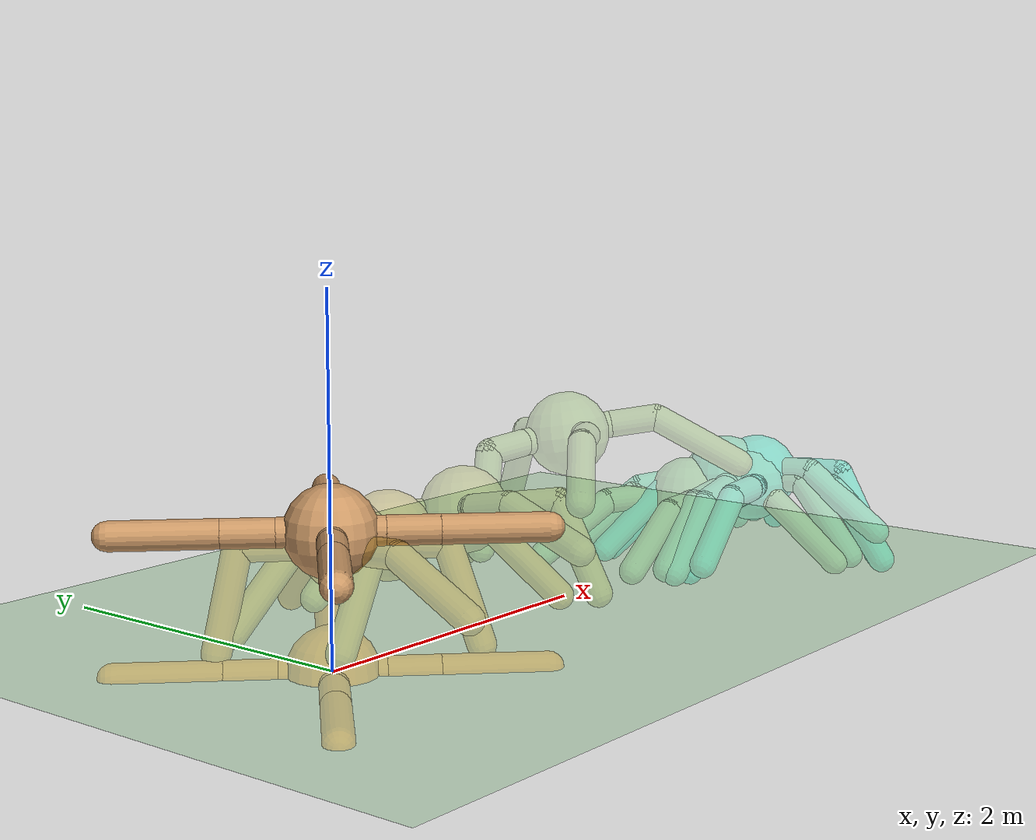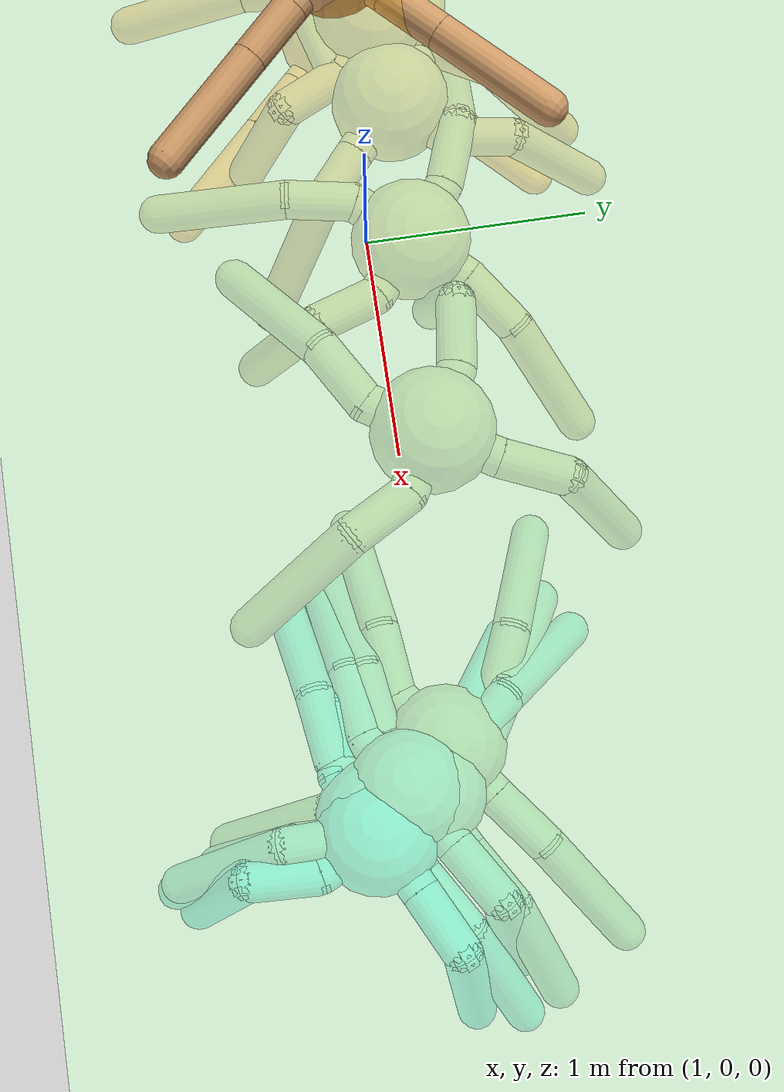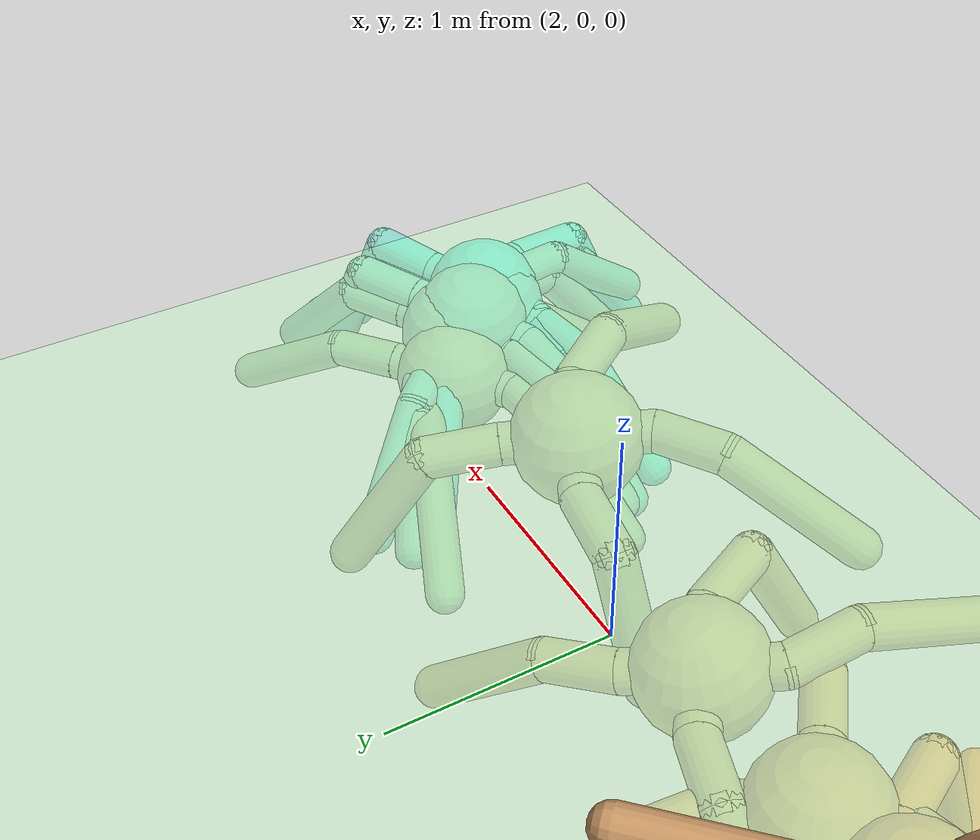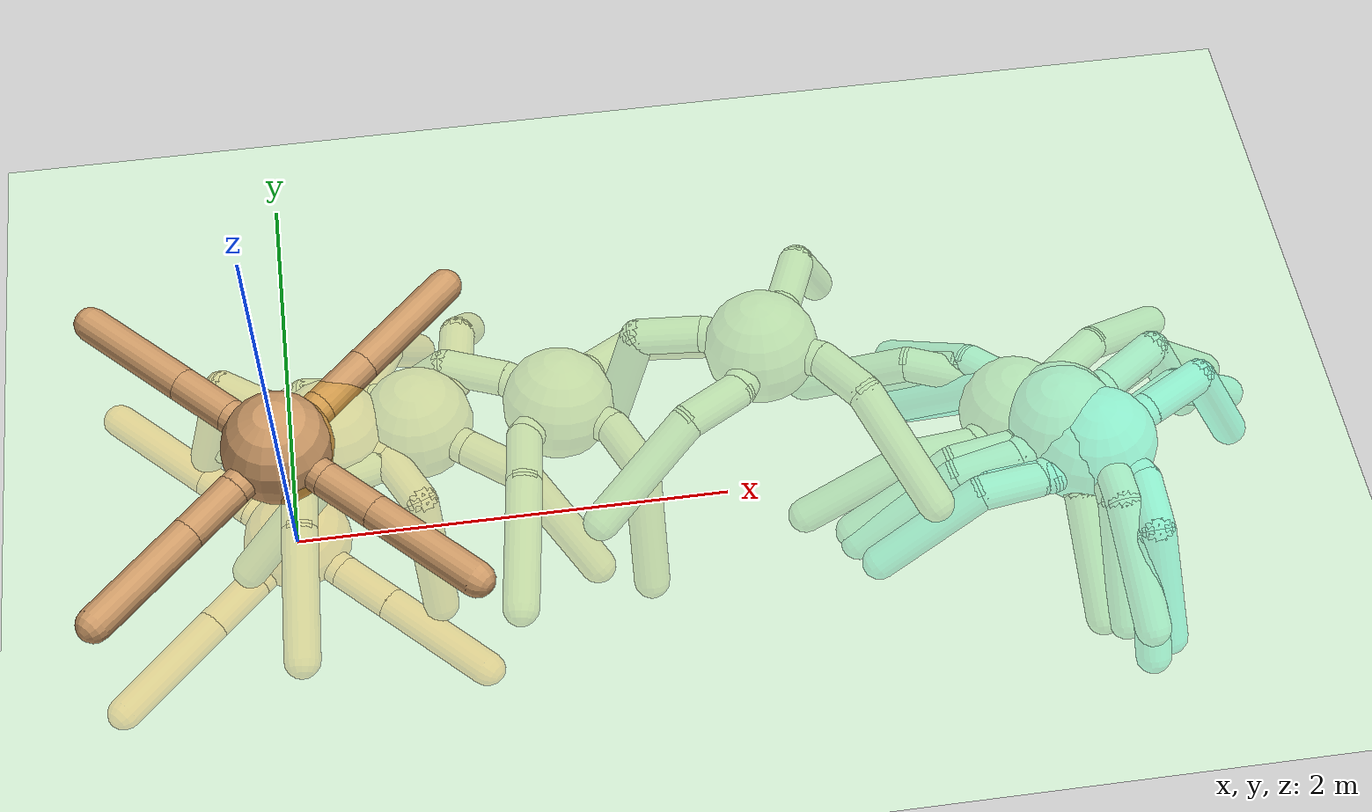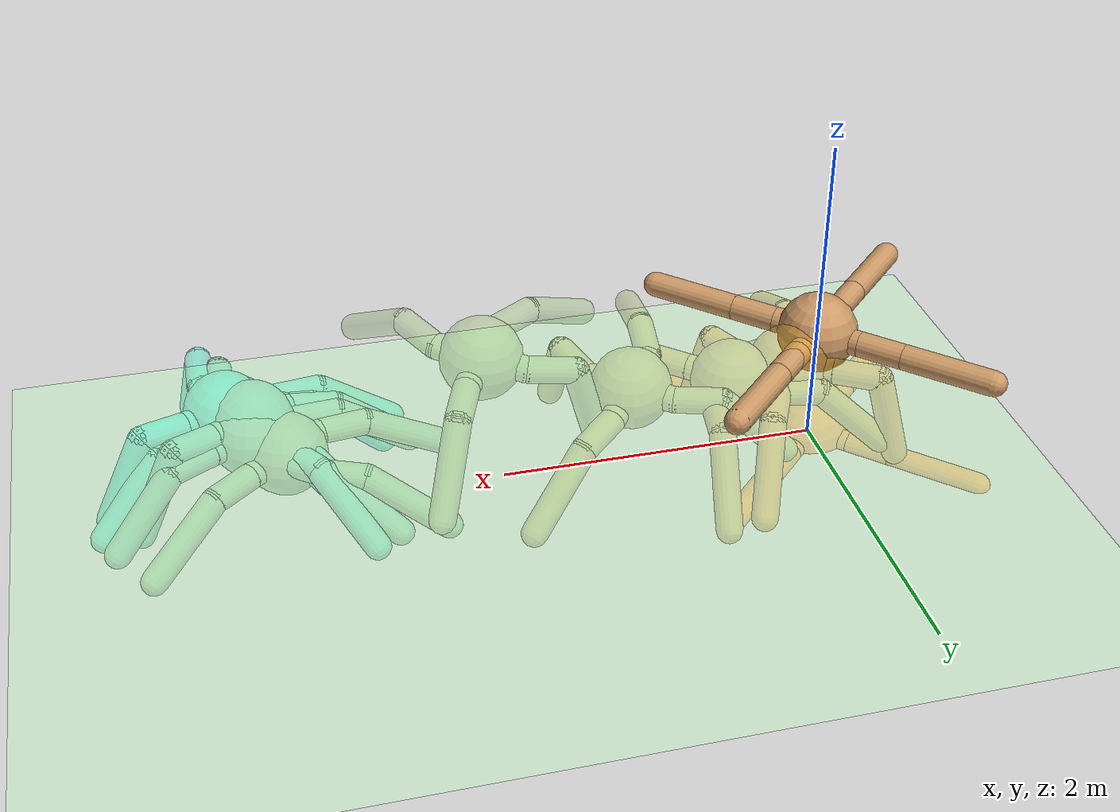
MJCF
<mujoco model="ant">
  <compiler angle="degree" coordinate="local" inertiafromgeom="true"/>
  <option integrator="RK4" timestep="0.01"/>
  <custom>
    <numeric data="0.0 0.0 0.55 1.0 0.0 0.0 0.0 0.0 1.0 0.0 -1.0 0.0 -1.0 0.0 1.0" name="init_qpos"/>
  </custom>
  <default>
    <joint armature="1" damping="1" limited="true"/>
    <geom conaffinity="0" condim="3" density="5.0" friction="1 0.5 0.5" margin="0.01" rgba="0.8 0.6 0.4 1"/>
  </default>
  <asset>
    <texture type="skybox" builtin="gradient" rgb1="0.5 .5 .5" rgb2="0.9 0.9 0.9" width="512" height="3072"/>
    <texture type="2d" name="groundplane" builtin="checker" mark="edge" rgb1="0.9 0.9 0.9" rgb2="0.5 0.5 0.5"
      markrgb="0.8 0.8 0.8" width="300" height="300"/>
    <material name="groundplane" texture="groundplane" texuniform="true" texrepeat="1.5 1.5" reflectance="0.2"/>
  </asset>
  <worldbody>
    <light cutoff="100" diffuse="1 1 1" dir="-0 0 -1.3" directional="true" exponent="1" pos="0 0 1.3" specular=".1 .1 .1"/>
    <geom conaffinity="1" condim="3" material="groundplane" name="floor" pos="0 0 0" rgba="0.8 0.9 0.8 1" size="40 40 40" type="plane"/>
    <body name="torso" pos="0 0 0.75">
      <camera name="track" mode="trackcom" pos="0 -3 0.3" xyaxes="1 0 0 0 0 1"/>
      <geom name="torso_geom" pos="0 0 0" size="0.25" type="sphere"/>
      <joint armature="0" damping="0" limited="false" margin="0.01" name="root" pos="0 0 0" type="free"/>
      <body name="front_left_leg" pos="0 0 0">
        <geom fromto="0.0 0.0 0.0 0.2 0.2 0.0" name="aux_1_geom" size="0.08" type="capsule"/>
        <body name="aux_1" pos="0.2 0.2 0">
          <joint axis="0 0 1" name="hip_1" pos="0.0 0.0 0.0" range="-30 30" type="hinge"/>
          <geom fromto="0.0 0.0 0.0 0.2 0.2 0.0" name="left_leg_geom" size="0.08" type="capsule"/>
          <body pos="0.2 0.2 0">
            <joint axis="-1 1 0" name="ankle_1" pos="0.0 0.0 0.0" range="30 70" type="hinge"/>
            <geom fromto="0.0 0.0 0.0 0.4 0.4 0.0" name="left_ankle_geom" size="0.08" type="capsule"/>
          </body>
        </body>
      </body>
      <body name="front_right_leg" pos="0 0 0">
        <geom fromto="0.0 0.0 0.0 -0.2 0.2 0.0" name="aux_2_geom" size="0.08" type="capsule"/>
        <body name="aux_2" pos="-0.2 0.2 0">
          <joint axis="0 0 1" name="hip_2" pos="0.0 0.0 0.0" range="-30 30" type="hinge"/>
          <geom fromto="0.0 0.0 0.0 -0.2 0.2 0.0" name="right_leg_geom" size="0.08" type="capsule"/>
          <body pos="-0.2 0.2 0">
            <joint axis="1 1 0" name="ankle_2" pos="0.0 0.0 0.0" range="-70 -30" type="hinge"/>
            <geom fromto="0.0 0.0 0.0 -0.4 0.4 0.0" name="right_ankle_geom" size="0.08" type="capsule"/>
          </body>
        </body>
      </body>
      <body name="back_leg" pos="0 0 0">
        <geom fromto="0.0 0.0 0.0 -0.2 -0.2 0.0" name="aux_3_geom" size="0.08" type="capsule"/>
        <body name="aux_3" pos="-0.2 -0.2 0">
          <joint axis="0 0 1" name="hip_3" pos="0.0 0.0 0.0" range="-30 30" type="hinge"/>
          <geom fromto="0.0 0.0 0.0 -0.2 -0.2 0.0" name="back_leg_geom" size="0.08" type="capsule"/>
          <body pos="-0.2 -0.2 0">
            <joint axis="-1 1 0" name="ankle_3" pos="0.0 0.0 0.0" range="-70 -30" type="hinge"/>
            <geom fromto="0.0 0.0 0.0 -0.4 -0.4 0.0" name="third_ankle_geom" size="0.08" type="capsule"/>
          </body>
        </body>
      </body>
      <body name="right_back_leg" pos="0 0 0">
        <geom fromto="0.0 0.0 0.0 0.2 -0.2 0.0" name="aux_4_geom" size="0.08" type="capsule"/>
        <body name="aux_4" pos="0.2 -0.2 0">
          <joint axis="0 0 1" name="hip_4" pos="0.0 0.0 0.0" range="-30 30" type="hinge"/>
          <geom fromto="0.0 0.0 0.0 0.2 -0.2 0.0" name="rightback_leg_geom" size="0.08" type="capsule"/>
          <body pos="0.2 -0.2 0">
            <joint axis="1 1 0" name="ankle_4" pos="0.0 0.0 0.0" range="30 70" type="hinge"/>
            <geom fromto="0.0 0.0 0.0 0.4 -0.4 0.0" name="fourth_ankle_geom" size="0.08" type="capsule"/>
          </body>
        </body>
      </body>
    </body>

        <geom type="sphere" size="0.25 0.0 0.0" pos="0.0 0.0 0.0" quat="1.0 0.0 0.0 0.0" rgba="1.0 0.6 0.0 0.3" contype="0" conaffinity="0"/>
        <geom type="capsule" size="0.08 0.14142135623730953 0.0" pos="0.1 0.1 0.0" quat="0.7071067811865476 0.5 -0.5 0.0" rgba="1.0 0.6 0.0 0.3" contype="0" conaffinity="0"/>
        <geom type="capsule" size="0.08 0.14142135623730953 0.0" pos="0.30000000000000004 0.30000000000000004 0.0" quat="0.7071067811865476 0.5 -0.5 0.0" rgba="1.0 0.6 0.0 0.3" contype="0" conaffinity="0"/>
        <geom type="capsule" size="0.08 0.28284271247461906 0.0" pos="0.6000000000000001 0.6000000000000001 0.0" quat="0.7071067811865476 0.5 -0.5 0.0" rgba="1.0 0.6 0.0 0.3" contype="0" conaffinity="0"/>
        <geom type="capsule" size="0.08 0.14142135623730953 0.0" pos="-0.1 0.1 0.0" quat="0.7071067811865476 0.5 0.5 0.0" rgba="1.0 0.6 0.0 0.3" contype="0" conaffinity="0"/>
        <geom type="capsule" size="0.08 0.14142135623730953 0.0" pos="-0.30000000000000004 0.30000000000000004 0.0" quat="0.7071067811865476 0.5 0.5 0.0" rgba="1.0 0.6 0.0 0.3" contype="0" conaffinity="0"/>
        <geom type="capsule" size="0.08 0.28284271247461906 0.0" pos="-0.6000000000000001 0.6000000000000001 0.0" quat="0.7071067811865476 0.5 0.5 0.0" rgba="1.0 0.6 0.0 0.3" contype="0" conaffinity="0"/>
        <geom type="capsule" size="0.08 0.14142135623730953 0.0" pos="-0.1 -0.1 0.0" quat="0.7071067811865476 -0.5 0.5 0.0" rgba="1.0 0.6 0.0 0.3" contype="0" conaffinity="0"/>
        <geom type="capsule" size="0.08 0.14142135623730953 0.0" pos="-0.30000000000000004 -0.30000000000000004 0.0" quat="0.7071067811865476 -0.5 0.5 0.0" rgba="1.0 0.6 0.0 0.3" contype="0" conaffinity="0"/>
        <geom type="capsule" size="0.08 0.28284271247461906 0.0" pos="-0.6000000000000001 -0.6000000000000001 0.0" quat="0.7071067811865476 -0.5 0.5 0.0" rgba="1.0 0.6 0.0 0.3" contype="0" conaffinity="0"/>
        <geom type="capsule" size="0.08 0.14142135623730953 0.0" pos="0.1 -0.1 0.0" quat="0.7071067811865476 -0.5 -0.5 0.0" rgba="1.0 0.6 0.0 0.3" contype="0" conaffinity="0"/>
        <geom type="capsule" size="0.08 0.14142135623730953 0.0" pos="0.30000000000000004 -0.30000000000000004 0.0" quat="0.7071067811865476 -0.5 -0.5 0.0" rgba="1.0 0.6 0.0 0.3" contype="0" conaffinity="0"/>
        <geom type="capsule" size="0.08 0.28284271247461906 0.0" pos="0.6000000000000001 -0.6000000000000001 0.0" quat="0.7071067811865476 -0.5 -0.5 0.0" rgba="1.0 0.6 0.0 0.3" contype="0" conaffinity="0"/>
        <geom type="sphere" size="0.25 0.0 0.0" pos="0.22874416777955228 0.12593795880220246 0.6250245169343319" quat="0.9928079669065046 -0.029281975805548754 0.046875957258123914 0.10619581616537643" rgba="0.889 0.644 0.089 0.3" contype="0" conaffinity="0"/>
        <geom type="capsule" size="0.08 0.14142135623730953 0.0" pos="0.3046882518340894 0.244322848045547 0.6102761578405735" quat="0.7401002123474553 0.5287964078772966 -0.4101597681187339 0.06629479101789007" rgba="0.889 0.644 0.089 0.3" contype="0" conaffinity="0"/>
        <geom type="capsule" size="0.08 0.14142135623730953 0.0" pos="0.44257049627179057 0.48906313382519506 0.5814573312882358" quat="0.7341120394568886 0.555105933042917 -0.3769758458156461 0.10404868233946177" rgba="0.889 0.644 0.089 0.3" contype="0" conaffinity="0"/>
        <geom type="capsule" size="0.08 0.28284271247461906 0.0" pos="0.5720084158803574 0.7754924716128958 0.34418266172593964" quat="0.934590925970654 0.27625061219083485 -0.1706241103185943 0.14530248908911572" rgba="0.889 0.644 0.089 0.3" contype="0" conaffinity="0"/>
        <geom type="capsule" size="0.08 0.14142135623730953 0.0" pos="0.11007821453004775 0.202699075367615 0.6301355366973093" quat="0.6932242550893314 0.4226005917119201 0.5826481987877707 0.03701281521234133" rgba="0.889 0.644 0.089 0.3" contype="0" conaffinity="0"/>
        <geom type="capsule" size="0.08 0.14142135623730953 0.0" pos="-0.12508606416672216 0.3594981689251623 0.6399436201163974" quat="0.6947373664310683 0.42977167766352187 0.5761101742659869 0.027080691828673516" rgba="0.889 0.644 0.089 0.3" contype="0" conaffinity="0"/>
        <geom type="capsule" size="0.08 0.28284271247461906 0.0" pos="-0.3127877991600486 0.45306290481294487 0.3712415227225977" quat="0.9878514019727559 0.035075655224359126 0.1243531122964762 0.0863458713154403" rgba="0.889 0.644 0.089 0.3" contype="0" conaffinity="0"/>
        <geom type="capsule" size="0.08 0.14142135623730953 0.0" pos="0.1528000837250152 0.007553069558857914 0.6397728760280903" quat="0.6639422792837826 -0.5702073751945846 0.4764523826223944 0.08388877247046526" rgba="0.889 0.644 0.089 0.3" contype="0" conaffinity="0"/>
        <geom type="capsule" size="0.08 0.14142135623730953 0.0" pos="0.07121027303032751 -0.2517754020698618 0.6646717205822413" quat="0.6234955760540462 -0.6576309495015011 0.3215725730914396 0.274528470534729" rgba="0.889 0.644 0.089 0.3" contype="0" conaffinity="0"/>
        <geom type="capsule" size="0.08 0.28284271247461906 0.0" pos="0.04373356685760074 -0.6482641959376204 0.5555743414031692" quat="0.7777192988298788 -0.47659981663854106 0.24909873636503282 0.3255074907725078" rgba="0.889 0.644 0.089 0.3" contype="0" conaffinity="0"/>
        <geom type="capsule" size="0.08 0.14142135623730953 0.0" pos="0.34741012102905683 0.049176842236789906 0.6199134971713546" quat="0.7108182365419066 -0.4640115590292081 -0.5163555842841103 0.11317074827601398" rgba="0.889 0.644 0.089 0.3" contype="0" conaffinity="0"/>
        <geom type="capsule" size="0.08 0.14142135623730953 0.0" pos="0.5281542491198258 -0.15461007011307595 0.6180808022403248" quat="0.6945357074153165 -0.6037480124723611 -0.3835087561369173 -0.07765000017446355" rgba="0.889 0.644 0.089 0.3" contype="0" conaffinity="0"/>
        <geom type="capsule" size="0.08 0.28284271247461906 0.0" pos="0.6084629415030676 -0.3844930159164679 0.35851306010505823" quat="0.9701269874667159 -0.17773786902070032 -0.06130790335800248 -0.15331085770610098" rgba="0.889 0.644 0.089 0.3" contype="0" conaffinity="0"/>
        <geom type="sphere" size="0.25 0.0 0.0" pos="0.6119138497346643 0.16048925721305146 0.5975477547550906" quat="0.9987788350340995 -0.028139779272993205 -0.005015964579222307 0.04029679403791731" rgba="0.778 0.689 0.178 0.3" contype="0" conaffinity="0"/>
        <geom type="capsule" size="0.08 0.14142135623730953 0.0" pos="0.7035627640588455 0.26808386808377815 0.5926614253785755" quat="0.7178051945050973 0.49963998579098223 -0.4827878430662506 0.045072008250396714" rgba="0.778 0.689 0.178 0.3" contype="0" conaffinity="0"/>
        <geom type="capsule" size="0.08 0.14142135623730953 0.0" pos="0.8137397291483724 0.5156748710365876 0.5801776267631271" quat="0.6851049261885553 0.6138126684651535 -0.3104398459253551 0.23977562471131955" rgba="0.778 0.689 0.178 0.3" contype="0" conaffinity="0"/>
        <geom type="capsule" size="0.08 0.28284271247461906 0.0" pos="0.8602131798404001 0.8362280912044271 0.3566674750468825" quat="0.8880105776895874 0.30437495610004817 -0.1602266559888897 0.3051565478915982" rgba="0.778 0.689 0.178 0.3" contype="0" conaffinity="0"/>
        <geom type="capsule" size="0.08 0.14142135623730953 0.0" pos="0.5042223606630033 0.2519283748274179 0.5911110668308268" quat="0.7228211590843195 0.45934319175306493 0.5159909919678488 0.01693222897740353" rgba="0.778 0.689 0.178 0.3" contype="0" conaffinity="0"/>
        <geom type="capsule" size="0.08 0.14142135623730953 0.0" pos="0.2572843656930991 0.36788073970208635 0.5815903387178083" quat="0.687107733362038 0.3063340133905092 0.628693680249342 0.19694337107068155" rgba="0.778 0.689 0.178 0.3" contype="0" conaffinity="0"/>
        <geom type="capsule" size="0.08 0.28284271247461906 0.0" pos="-0.08478497299068313 0.4178397148634451 0.38301866865842804" quat="0.8801707703088858 0.15970800474726626 0.3590498313892299 0.2662254437368368" rgba="0.778 0.689 0.178 0.3" contype="0" conaffinity="0"/>
        <geom type="capsule" size="0.08 0.14142135623730953 0.0" pos="0.5202649354104831 0.05289464634232477 0.6024340841316057" quat="0.6946813798113264 -0.5394356432810345 0.47569419792993145 0.011916264398181237" rgba="0.778 0.689 0.178 0.3" contype="0" conaffinity="0"/>
        <geom type="capsule" size="0.08 0.14142135623730953 0.0" pos="0.2922489186538363 -0.09216782151651534 0.6077364265989114" quat="0.6771504318777054 -0.37334465074854295 0.6017346592521078 -0.19999116035474" rgba="0.778 0.689 0.178 0.3" contype="0" conaffinity="0"/>
        <geom type="capsule" size="0.08 0.28284271247461906 0.0" pos="-0.02397027097435936 -0.1914944172266852 0.3988041099255123" quat="0.8990984086811751 -0.2037660555682455 0.29732193928857426 -0.24839708235568855" rgba="0.778 0.689 0.178 0.3" contype="0" conaffinity="0"/>
        <geom type="capsule" size="0.08 0.14142135623730953 0.0" pos="0.7196053388063254 0.069050139598685 0.6039844426793544" quat="0.6896654152321041 -0.4991388492431172 -0.523084637104168 0.04005604367117444" rgba="0.778 0.689 0.178 0.3" contype="0" conaffinity="0"/>
        <geom type="capsule" size="0.08 0.14142135623730953 0.0" pos="0.9369086748703549 -0.11152457323249935 0.6167526915695404" quat="0.6894469550239356 -0.49363631251819 -0.5279286310060689 0.04772261241513286" rgba="0.778 0.689 0.178 0.3" contype="0" conaffinity="0"/>
        <geom type="capsule" size="0.08 0.28284271247461906 0.0" pos="1.1939752010716327 -0.33029617151199697 0.41948753279437623" quat="0.9257710728824089 -0.26292740954548977 -0.26637872366059956 0.05347404515090919" rgba="0.778 0.689 0.178 0.3" contype="0" conaffinity="0"/>
        <geom type="sphere" size="0.25 0.0 0.0" pos="1.246504868528421 0.15359667167024665 0.6363548171579487" quat="0.9916032974252666 -0.09794028691052829 0.06311962759764389 0.05609379062923916" rgba="0.667 0.733 0.267 0.3" contype="0" conaffinity="0"/>
        <geom type="capsule" size="0.08 0.14142135623730953 0.0" pos="1.3327177999434496 0.2609370757040795 0.6040226641414679" quat="0.7816993731104332 0.4545943030014624 -0.42312243669775035 0.057074629392835606" rgba="0.667 0.733 0.267 0.3" contype="0" conaffinity="0"/>
        <geom type="capsule" size="0.08 0.14142135623730953 0.0" pos="1.5286968624471788 0.4521628251905468 0.5414474080416326" quat="0.7788815123121027 0.39109666946776356 -0.49001824329243604 -0.016404455194561057" rgba="0.667 0.733 0.267 0.3" contype="0" conaffinity="0"/>
        <geom type="capsule" size="0.08 0.28284271247461906 0.0" pos="1.817512587181403 0.6578188456537032 0.3292341268442399" quat="0.9058744277495991 0.24993355664693312 -0.34037090058701225 -0.032747342559928956" rgba="0.667 0.733 0.267 0.3" contype="0" conaffinity="0"/>
        <geom type="capsule" size="0.08 0.14142135623730953 0.0" pos="1.1355700402375384 0.24116074237750462 0.6312560532639501" quat="0.7185797455127892 0.3985005123722232 0.5684808607275166 -0.040865657517692666" rgba="0.667 0.733 0.267 0.3" contype="0" conaffinity="0"/>
        <geom type="capsule" size="0.08 0.14142135623730953 0.0" pos="0.8917677035933775 0.3768331305494319 0.631797769377022" quat="0.6891253162616015 0.3144833457618117 0.6488777493096766 0.0718623001066204" rgba="0.667 0.733 0.267 0.3" contype="0" conaffinity="0"/>
        <geom type="capsule" size="0.08 0.28284271247461906 0.0" pos="0.5560183937244806 0.4476750629834638 0.44167779024026566" quat="0.9055695388665427 0.11137047618903939 0.37621502716059413 0.16125346709146413" rgba="0.667 0.733 0.267 0.3" contype="0" conaffinity="0"/>
        <geom type="capsule" size="0.08 0.14142135623730953 0.0" pos="1.1602919371133924 0.04625626763641384 0.6686869701744296" quat="0.6206394586022608 -0.5931027850530438 0.5123870700982776 0.022253970079951252" rgba="0.667 0.733 0.267 0.3" contype="0" conaffinity="0"/>
        <geom type="capsule" size="0.08 0.14142135623730953 0.0" pos="1.0609031696398086 -0.1986541633819556 0.7310338698936892" quat="0.5799306909229811 -0.6877501896862503 0.3648531639333616 0.23992131851908627" rgba="0.667 0.733 0.267 0.3" contype="0" conaffinity="0"/>
        <geom type="capsule" size="0.08 0.28284271247461906 0.0" pos="1.008974983608227 -0.6042212118116816 0.6793427302229951" quat="0.7486776367224673 -0.5195941271062965 0.29254910234488113 0.2896873522705328" rgba="0.667 0.733 0.267 0.3" contype="0" conaffinity="0"/>
        <geom type="capsule" size="0.08 0.14142135623730953 0.0" pos="1.3574396968193037 0.0660326009629887 0.6414535810519474" quat="0.6837590861999048 -0.5370089944238047 -0.4792162273269896 0.12019425699047957" rgba="0.667 0.733 0.267 0.3" contype="0" conaffinity="0"/>
        <geom type="capsule" size="0.08 0.14142135623730953 0.0" pos="1.5180499753653784 -0.1522305602879834 0.6677678433607834" quat="0.6471095661906464 -0.6709510059699966 -0.35331694208567166 -0.07900060359031365" rgba="0.667 0.733 0.267 0.3" contype="0" conaffinity="0"/>
        <geom type="capsule" size="0.08 0.28284271247461906 0.0" pos="1.569522997288646 -0.4218510148268406 0.44261446516612046" quat="0.9474153551613876 -0.2480409765721674 -0.054340736389950905 -0.19474830708929264" rgba="0.667 0.733 0.267 0.3" contype="0" conaffinity="0"/>
        <geom type="sphere" size="0.25 0.0 0.0" pos="2.1485774377871465 0.09918694519929785 0.9574456181046277" quat="0.9867731206359994 -0.08519773597862318 -0.018494427914689054 0.13666788324444537" rgba="0.556 0.778 0.356 0.3" contype="0" conaffinity="0"/>
        <geom type="capsule" size="0.08 0.14142135623730953 0.0" pos="2.2181165049016074 0.22128676769929567 0.9414471341039621" quat="0.7311056191262932 0.5014766050879972 -0.43813015408841965 0.14848486895921484" rgba="0.556 0.778 0.356 0.3" contype="0" conaffinity="0"/>
        <geom type="capsule" size="0.08 0.14142135623730953 0.0" pos="2.3396090469938025 0.4736239562608444 0.9070349345877462" quat="0.7262687698639592 0.5287222508723481 -0.3941452345177479 0.1939999728343279" rgba="0.556 0.778 0.356 0.3" contype="0" conaffinity="0"/>
        <geom type="capsule" size="0.08 0.28284271247461906 0.0" pos="2.468904803335408 0.7280242233428262 0.6465432450150286" quat="0.9387471828365611 0.19021034615795585 -0.18942698233134841 0.21608139507077123" rgba="0.556 0.778 0.356 0.3" contype="0" conaffinity="0"/>
        <geom type="capsule" size="0.08 0.14142135623730953 0.0" pos="2.025724566571371 0.16671241688874 0.9388047300582271" quat="0.7496000470409824 0.3648087218435516 0.5486429665475802 0.06328713298059163" rgba="0.556 0.778 0.356 0.3" contype="0" conaffinity="0"/>
        <geom type="capsule" size="0.08 0.14142135623730953 0.0" pos="1.7632973487781989 0.25377971608808675 0.9084540702349728" quat="0.7136056353064771 0.25454103478438245 0.6275416850402025 0.1793524251484749" rgba="0.556 0.778 0.356 0.3" contype="0" conaffinity="0"/>
        <geom type="capsule" size="0.08 0.28284271247461906 0.0" pos="1.5479919592473876 0.2425931172299824 0.6259665797548735" quat="0.9430108766116179 -0.011440116988954892 0.14559265434786947 0.2990023232608901" rgba="0.556 0.778 0.356 0.3" contype="0" conaffinity="0"/>
        <geom type="capsule" size="0.08 0.14142135623730953 0.0" pos="2.0790383706726856 -0.022912877300699977 0.9734441021052933" quat="0.6644023110623591 -0.6219643987924482 0.4119750833031348 0.04479270506590258" rgba="0.556 0.778 0.356 0.3" contype="0" conaffinity="0"/>
        <geom type="capsule" size="0.08 0.14142135623730953 0.0" pos="1.8879721460794343 -0.21719450693325623 0.994018251544293" quat="0.6802180603074071 -0.48787117856923407 0.5274079383370169 -0.14534775585537468" rgba="0.556 0.778 0.356 0.3" contype="0" conaffinity="0"/>
        <geom type="capsule" size="0.08 0.28284271247461906 0.0" pos="1.5601622758555584 -0.4384168721151686 0.8751663897495758" quat="0.8344769034632876 -0.3811642537153622 0.36948979412247157 -0.14778160005653024" rgba="0.556 0.778 0.356 0.3" contype="0" conaffinity="0"/>
        <geom type="capsule" size="0.08 0.14142135623730953 0.0" pos="2.271430309002922 0.031661473509855695 0.9760865061510283" quat="0.6459078831476701 -0.4852965155480028 -0.5747980373328652 0.12999044104452573" rgba="0.556 0.778 0.356 0.3" contype="0" conaffinity="0"/>
        <geom type="capsule" size="0.08 0.14142135623730953 0.0" pos="2.4657837966047857 -0.15546570786278185 1.0188747107619287" quat="0.6402251015431323 -0.6109648903129666 -0.46053833635859825 -0.0688343148655265" rgba="0.556 0.778 0.356 0.3" contype="0" conaffinity="0"/>
        <geom type="capsule" size="0.08 0.28284271247461906 0.0" pos="2.6608121429270897 -0.49259943128802186 0.9110344410384121" quat="0.8505442507180667 -0.41638986847209797 -0.3054442407249442 -0.09948754098978767" rgba="0.556 0.778 0.356 0.3" contype="0" conaffinity="0"/>
        <geom type="sphere" size="0.25 0.0 0.0" pos="3.3182078080141735 -0.007021778106605611 0.40076634377039205" quat="0.9970114675820111 -0.018415834122031446 0.001032818185481325 -0.07501948980198514" rgba="0.444 0.822 0.444 0.3" contype="0" conaffinity="0"/>
        <geom type="capsule" size="0.08 0.14142135623730953 0.0" pos="3.4320372641847325 0.07682194616745978 0.3971490508918269" quat="0.7147178958017483 0.447974027701118 -0.5352851659493115 -0.04435528199186369" rgba="0.444 0.822 0.444 0.3" contype="0" conaffinity="0"/>
        <geom type="capsule" size="0.08 0.14142135623730953 0.0" pos="3.6574961785121505 0.2474128796423186 0.3898188390160592" quat="0.7154539977801952 0.45485216531965056 -0.5291335905982856 -0.03539389869635953" rgba="0.444 0.822 0.444 0.3" contype="0" conaffinity="0"/>
        <geom type="capsule" size="0.08 0.28284271247461906 0.0" pos="3.964397695786438 0.4814554451208678 0.24407458211398259" quat="0.8653566133320814 0.32173583089639335 -0.38132368098974856 -0.04728886968692312" rgba="0.444 0.822 0.444 0.3" contype="0" conaffinity="0"/>
        <geom type="capsule" size="0.08 0.14142135623730953 0.0" pos="3.234288860410154 0.10674767090070496 0.3970083249297226" quat="0.7136850776162669 0.5229935175031032 0.46172630163269973 -0.06277111611389515" rgba="0.444 0.822 0.444 0.3" contype="0" conaffinity="0"/>
        <geom type="capsule" size="0.08 0.14142135623730953 0.0" pos="3.02007595646027 0.2754859593734806 0.39186768988710285" quat="0.6996653076986753 0.3823851647207328 0.5906719049866949 0.12392232915744256" rgba="0.444 0.822 0.444 0.3" contype="0" conaffinity="0"/>
        <geom type="capsule" size="0.08 0.28284271247461906 0.0" pos="2.6670014279334935 0.41872926385308495 0.240230504752248" quat="0.860371988135171 0.25730212909124706 0.41009822344569535 0.1592956481644397" rgba="0.444 0.822 0.444 0.3" contype="0" conaffinity="0"/>
        <geom type="capsule" size="0.08 0.14142135623730953 0.0" pos="3.2043783518436144 -0.090865502380671 0.4043836366489572" quat="0.6952692434942354 -0.4740179500789082 0.5367457914346849 -0.0617382979284138" rgba="0.444 0.822 0.444 0.3" contype="0" conaffinity="0"/>
        <geom type="capsule" size="0.08 0.14142135623730953 0.0" pos="2.9499621623901313 -0.19000098215730848 0.40923892730031414" quat="0.6597533225845295 -0.3183348434287215 0.6348542435554685 -0.245659459898249" rgba="0.444 0.822 0.444 0.3" contype="0" conaffinity="0"/>
        <geom type="capsule" size="0.08 0.28284271247461906 0.0" pos="2.5650329246982606 -0.2369572649129078 0.2715737276548812" quat="0.8114474173067303 -0.23190940207534638 0.447961546532461 -0.29512975282668186" rgba="0.444 0.822 0.444 0.3" contype="0" conaffinity="0"/>
        <geom type="capsule" size="0.08 0.14142135623730953 0.0" pos="3.402126755618193 -0.12079122711391617 0.4045243626110615" quat="0.6963020616797166 -0.5490374398808934 -0.46026567614732644 -0.043322463806382376" rgba="0.444 0.822 0.444 0.3" contype="0" conaffinity="0"/>
        <geom type="capsule" size="0.08 0.14142135623730953 0.0" pos="3.50165270618221 -0.3750269414798797 0.4133469401491039" quat="0.6561975548950427 -0.6499996216551482 -0.3088792819878235 -0.22693358049574494" rgba="0.444 0.822 0.444 0.3" contype="0" conaffinity="0"/>
        <geom type="capsule" size="0.08 0.28284271247461906 0.0" pos="3.539833171840717 -0.7335690192583328 0.23971236952782804" quat="0.8529294957276277 -0.38846175071302436 -0.1822060726199909 -0.29733767109329706" rgba="0.444 0.822 0.444 0.3" contype="0" conaffinity="0"/>
        <geom type="sphere" size="0.25 0.0 0.0" pos="3.499884778152884 -0.12351603993089826 0.4818938559460564" quat="0.9878738947187427 -0.03609920159293313 -0.04358667967062908 -0.1445759908590148" rgba="0.333 0.867 0.533 0.3" contype="0" conaffinity="0"/>
        <geom type="capsule" size="0.08 0.14142135623730953 0.0" pos="3.624203633299152 -0.05620699439590471 0.48567732582033396" quat="0.6947885908739405 0.3961229616880809 -0.5970453795533867 -0.06238772290139256" rgba="0.333 0.867 0.533 0.3" contype="0" conaffinity="0"/>
        <geom type="capsule" size="0.08 0.14142135623730953 0.0" pos="3.8695007037918305 0.08428039989598243 0.4924940587580114" quat="0.698001212555187 0.4088710817285161 -0.5861302269397284 -0.045498383105618836" rgba="0.333 0.867 0.533 0.3" contype="0" conaffinity="0"/>
        <geom type="capsule" size="0.08 0.28284271247461906 0.0" pos="4.170257324942246 0.23923821600675838 0.29306289648726386" quat="0.9216570359693971 0.18937820490234075 -0.3259232658938835 -0.09196862674378918" rgba="0.333 0.867 0.533 0.3" contype="0" conaffinity="0"/>
        <geom type="capsule" size="0.08 0.14142135623730953 0.0" pos="3.433324439610182 0.00029276673870315406 0.4663664374828939" quat="0.7383752705445695 0.5406989525470958 0.39082851516535655 -0.09848692449432574" rgba="0.333 0.867 0.533 0.3" contype="0" conaffinity="0"/>
        <geom type="capsule" size="0.08 0.14142135623730953 0.0" pos="3.2466091632135847 0.19709588620135982 0.43552166907934287" quat="0.7404307183118399 0.40379353662534245 0.5317854545926567 0.07692438783307542" rgba="0.333 0.867 0.533 0.3" contype="0" conaffinity="0"/>
        <geom type="capsule" size="0.08 0.28284271247461906 0.0" pos="2.9289713947518603 0.384698926803407 0.25327507926431786" quat="0.8863096086079197 0.26874706403241205 0.3642568075407527 0.09771013981903179" rgba="0.333 0.867 0.533 0.3" contype="0" conaffinity="0"/>
        <geom type="capsule" size="0.08 0.14142135623730953 0.0" pos="3.3755659230066164 -0.1908250854658918 0.4781103860717788" quat="0.7022760689516364 -0.44717494217164744 0.5354045060243713 -0.14207360416495482" rgba="0.333 0.867 0.533 0.3" contype="0" conaffinity="0"/>
        <geom type="capsule" size="0.08 0.14142135623730953 0.0" pos="3.1111963960055258 -0.2754876717735907 0.46512561543822367" quat="0.6783861096450906 -0.3282132111788266 0.5997871098936467 -0.26893084065184825" rgba="0.333 0.867 0.533 0.3" contype="0" conaffinity="0"/>
        <geom type="capsule" size="0.08 0.28284271247461906 0.0" pos="2.746356628155948 -0.3348667743690049 0.28947998622241083" quat="0.8348352392222804 -0.23414280267979473 0.38851301728398796 -0.3119052848331062" rgba="0.333 0.867 0.533 0.3" contype="0" conaffinity="0"/>
        <geom type="capsule" size="0.08 0.14142135623730953 0.0" pos="3.5664451166955864 -0.24732484660049966 0.49742127440921885" quat="0.6586893892810074 -0.5917509330306623 -0.4524693886943718 -0.10597440257202166" rgba="0.333 0.867 0.533 0.3" contype="0" conaffinity="0"/>
        <geom type="capsule" size="0.08 0.14142135623730953 0.0" pos="3.6283889933611055 -0.5120071494255057 0.5244962623434755" quat="0.6106605551592713 -0.6728209038241232 -0.29688188690699546 -0.29371221114622376" rgba="0.333 0.867 0.533 0.3" contype="0" conaffinity="0"/>
        <geom type="capsule" size="0.08 0.28284271247461906 0.0" pos="3.6363539715771513 -0.8301238475135968 0.31598348842251356" quat="0.861080956135875 -0.2938694638732077 -0.15692461724014584 -0.38412887119694045" rgba="0.333 0.867 0.533 0.3" contype="0" conaffinity="0"/>
        <geom type="sphere" size="0.25 0.0 0.0" pos="3.4882386605203837 -0.18582415585173473 0.5375851380009703" quat="0.9887701991110648 -0.024770138896104504 -0.08845917798441402 -0.11787666180909576" rgba="0.222 0.911 0.622 0.3" contype="0" conaffinity="0"/>
        <geom type="capsule" size="0.08 0.14142135623730953 0.0" pos="3.6076434891051643 -0.11159820613621581 0.5528493215516384" quat="0.667321593282452 0.41793163546661677 -0.6158735150710475 -0.026736728468585685" rgba="0.222 0.911 0.622 0.3" contype="0" conaffinity="0"/>
        <geom type="capsule" size="0.08 0.14142135623730953 0.0" pos="3.846450781211953 0.036857639040492676 0.5833770015790796" quat="0.6673238949050756 0.4179397060769357 -0.6158660661223695 -0.026724707145327063" rgba="0.222 0.911 0.622 0.3" contype="0" conaffinity="0"/>
        <geom type="capsule" size="0.08 0.28284271247461906 0.0" pos="4.085951470777703 0.13874534377276965 0.34405954494374197" quat="0.969168158174625 0.07304997119560981 -0.2112437121953013 -0.10369607970736376" rgba="0.222 0.911 0.622 0.3" contype="0" conaffinity="0"/>
        <geom type="capsule" size="0.08 0.14142135623730953 0.0" pos="3.4163314625327375 -0.06585349243932857 0.5166950734258501" quat="0.7557807712668659 0.5358082972757124 0.37289668404001797 -0.05150686736469018" rgba="0.222 0.911 0.622 0.3" contype="0" conaffinity="0"/>
        <geom type="capsule" size="0.08 0.14142135623730953 0.0" pos="3.251919877256653 0.15851457475534053 0.4724786200193274" quat="0.7631598736326229 0.4878846363120602 0.4236712676524759 0.007631899726372385" rgba="0.222 0.911 0.622 0.3" contype="0" conaffinity="0"/>
        <geom type="capsule" size="0.08 0.28284271247461906 0.0" pos="3.0230559765690317 0.43390267998259713 0.2697970998844481" quat="0.9039020770981785 0.3331101015442801 0.2682901158930944 -0.004371382027378669" rgba="0.222 0.911 0.622 0.3" contype="0" conaffinity="0"/>
        <geom type="capsule" size="0.08 0.14142135623730953 0.0" pos="3.368833831935603 -0.26005010556725366 0.5223209544503022" quat="0.7310106323707614 -0.452961901835353 0.49077334584911375 -0.13996604534910423" rgba="0.222 0.911 0.622 0.3" contype="0" conaffinity="0"/>
        <geom type="capsule" size="0.08 0.14142135623730953 0.0" pos="3.1105668656662546 -0.3481704978103702 0.4841602387491217" quat="0.7061056811830932 -0.3022416448305861 0.5724495806476644 -0.28699517896190635" rgba="0.222 0.911 0.622 0.3" contype="0" conaffinity="0"/>
        <geom type="capsule" size="0.08 0.28284271247461906 0.0" pos="2.7549514055429074 -0.39600478490159735 0.2827529669700154" quat="0.8419523505479432 -0.21539241521534228 0.3715383172738589 -0.32662153277425826" rgba="0.222 0.911 0.622 0.3" contype="0" conaffinity="0"/>
        <geom type="capsule" size="0.08 0.14142135623730953 0.0" pos="3.56014585850803 -0.30579481926414087 0.5584752025760905" quat="0.6425514543863474 -0.5708385636444488 -0.49799685326195187 -0.11519590645299971" rgba="0.222 0.911 0.622 0.3" contype="0" conaffinity="0"/>
        <geom type="capsule" size="0.08 0.14142135623730953 0.0" pos="3.634563152263867 -0.5667779652342781 0.589814151404573" quat="0.607278825450493 -0.6479469164134921 -0.3422092606391245 -0.30703427105543185" rgba="0.222 0.911 0.622 0.3" contype="0" conaffinity="0"/>
        <geom type="capsule" size="0.08 0.28284271247461906 0.0" pos="3.672897055354992 -0.9300998878439004 0.429104723874066" quat="0.8184698228749602 -0.37203636135330714 -0.24294225349649282 -0.36424601074009044" rgba="0.222 0.911 0.622 0.3" contype="0" conaffinity="0"/>
        <geom type="sphere" size="0.25 0.0 0.0" pos="3.574291680371316 -0.32157311111850995 0.4981502957169797" quat="0.9914607628221573 -0.030125288265710846 -0.01067252972321695 -0.12642831921812825" rgba="0.111 0.956 0.711 0.3" contype="0" conaffinity="0"/>
        <geom type="capsule" size="0.08 0.14142135623730953 0.0" pos="3.696206121982866 -0.24995688265317104 0.4953245662634939" quat="0.7107950079431816 0.41121442618413095 -0.5664911591598446 -0.0689994128586921" rgba="0.111 0.956 0.711 0.3" contype="0" conaffinity="0"/>
        <geom type="capsule" size="0.08 0.14142135623730953 0.0" pos="3.938581942228928 -0.10431310268928976 0.48950252631148566" quat="0.7118545451155494 0.4166924191569715 -0.561937603704257 -0.06210204472127051" rgba="0.111 0.956 0.711 0.3" contype="0" conaffinity="0"/>
        <geom type="capsule" size="0.08 0.28284271247461906 0.0" pos="4.239942743071777 0.06742559973658387 0.29226942725542476" quat="0.913427938037194 0.2230819071651609 -0.3269083768171474 -0.09494618410158874" rgba="0.111 0.956 0.711 0.3" contype="0" conaffinity="0"/>
        <geom type="capsule" size="0.08 0.14142135623730953 0.0" pos="3.502645331099272 -0.19994600074121407 0.48956853265468664" quat="0.7214675376663986 0.5376427454022592 0.42496960366231284 -0.09912470112440294" rgba="0.111 0.956 0.711 0.3" contype="0" conaffinity="0"/>
        <geom type="capsule" size="0.08 0.14142135623730953 0.0" pos="3.3178119623564224 0.006192280538292988 0.4741632356067755" quat="0.7230213655578827 0.44038677016665984 0.5309751942395622 0.03694510402274905" rgba="0.111 0.956 0.711 0.3" contype="0" conaffinity="0"/>
        <geom type="capsule" size="0.08 0.28284271247461906 0.0" pos="3.0349942608939764 0.2077460923222393 0.27362224772894866" quat="0.9160879256987392 0.24522050026196676 0.3121211191954784 0.05683507361140897" rgba="0.111 0.956 0.711 0.3" contype="0" conaffinity="0"/>
        <geom type="capsule" size="0.08 0.14142135623730953 0.0" pos="3.4523772387597655 -0.39318933958384883 0.5009760251704655" quat="0.6913422494006878 -0.4538180174198982 0.5513979228804411 -0.1097972308476199" rgba="0.111 0.956 0.711 0.3" contype="0" conaffinity="0"/>
        <geom type="capsule" size="0.08 0.14142135623730953 0.0" pos="3.1903835658280797 -0.484230766160192 0.5031157290353464" quat="0.6644558296396096 -0.33413198562205626 0.6212329268924922 -0.24682770749409" rgba="0.111 0.956 0.711 0.3" contype="0" conaffinity="0"/>
        <geom type="capsule" size="0.08 0.28284271247461906 0.0" pos="2.8266016973381394 -0.5454305637719252 0.33446538295030853" quat="0.8415954739725684 -0.22572557603962312 0.3900335745426722 -0.297722745587122" rgba="0.111 0.956 0.711 0.3" contype="0" conaffinity="0"/>
        <geom type="capsule" size="0.08 0.14142135623730953 0.0" pos="3.64593802964336 -0.44320022149580585 0.5067320587792729" quat="0.6806697196774709 -0.5802463366380264 -0.4400628399417162 -0.07967194258190906" rgba="0.111 0.956 0.711 0.3" contype="0" conaffinity="0"/>
        <geom type="capsule" size="0.08 0.14142135623730953 0.0" pos="3.718562106214239 -0.7059685306755763 0.5241572402942613" quat="0.6317127773335458 -0.6705687477615837 -0.28566371892369763 -0.26395598339435833" rgba="0.111 0.956 0.711 0.3" contype="0" conaffinity="0"/>
        <geom type="capsule" size="0.08 0.28284271247461906 0.0" pos="3.7238134178273263 -1.0178713192181323 0.30756282708033233" quat="0.8763552260109765 -0.29138209941889043 -0.1287436342876294 -0.361279762250674" rgba="0.111 0.956 0.711 0.3" contype="0" conaffinity="0"/>
        <geom type="sphere" size="0.25 0.0 0.0" pos="3.6349472749212426 -0.3283362765892015 0.5372471940564747" quat="0.9844793226586152 -0.02294489384354109 -0.08119951034888409 -0.15388513451027291" rgba="0.0 1.0 0.8 0.3" contype="0" conaffinity="0"/>
        <geom type="capsule" size="0.08 0.14142135623730953 0.0" pos="3.759564445327415 -0.26310442091350883 0.5519225422657869" quat="0.6670046967371744 0.3990726040437979 -0.6265989529811674 -0.05674102003980538" rgba="0.0 1.0 0.8 0.3" contype="0" conaffinity="0"/>
        <geom type="capsule" size="0.08 0.14142135623730953 0.0" pos="4.010123268864492 -0.13533033170859676 0.5816700181229091" quat="0.6652463588642598 0.3935779214776794 -0.6311770259275035 -0.06449235368992509" rgba="0.0 1.0 0.8 0.3" contype="0" conaffinity="0"/>
        <geom type="capsule" size="0.08 0.28284271247461906 0.0" pos="4.259079106048975 -0.050751553284726914 0.343006257077893" quat="0.9623072277321898 0.07391731317854644 -0.21445351943890845 -0.15003572330321233" rgba="0.0 1.0 0.8 0.3" contype="0" conaffinity="0"/>
        <geom type="capsule" size="0.08 0.14142135623730953 0.0" pos="3.5716740433690726 -0.20325097337558853 0.5185344954562198" quat="0.7482042070860585 0.5529577385540708 0.3578803696774481 -0.07968591388334648" rgba="0.0 1.0 0.8 0.3" contype="0" conaffinity="0"/>
        <geom type="capsule" size="0.08 0.14142135623730953 0.0" pos="3.3912949546502404 -0.0024561800721909915 0.4762784044154895" quat="0.7584109891154784 0.41176470950614824 0.4972035415917073 0.08972866778718398" rgba="0.0 1.0 0.8 0.3" contype="0" conaffinity="0"/>
        <geom type="capsule" size="0.08 0.28284271247461906 0.0" pos="3.095219979473254 0.19310729220065234 0.2694181339919172" quat="0.9019662953542809 0.2712786019202944 0.31991624110176664 0.10255886536210056" rgba="0.0 1.0 0.8 0.3" contype="0" conaffinity="0"/>
        <geom type="capsule" size="0.08 0.14142135623730953 0.0" pos="3.51033010451507 -0.3935681322648942 0.5225718458471625" quat="0.7252593132425174 -0.4315215841045447 0.5117655041877212 -0.1608854242322306" rgba="0.0 1.0 0.8 0.3" contype="0" conaffinity="0"/>
        <geom type="capsule" size="0.08 0.14142135623730953 0.0" pos="3.2461613488996006 -0.45262573504408254 0.4858231275566323" quat="0.6857542547596879 -0.2543265786295775 0.597726394818086 -0.32830207190837646" rgba="0.0 1.0 0.8 0.3" contype="0" conaffinity="0"/>
        <geom type="capsule" size="0.08 0.28284271247461906 0.0" pos="2.8938960645141174 -0.4466320795473543 0.27732859567407186" quat="0.8263870928687967 -0.17389616540974911 0.37444753235904227 -0.38292759355505906" rgba="0.0 1.0 0.8 0.3" contype="0" conaffinity="0"/>
        <geom type="capsule" size="0.08 0.14142135623730953 0.0" pos="3.6982205064734126 -0.4534215798028145 0.5559598926567296" quat="0.6440598028936334 -0.5854067186148176 -0.47271381847089444 -0.13794053038868953" rgba="0.0 1.0 0.8 0.3" contype="0" conaffinity="0"/>
        <geom type="capsule" size="0.08 0.14142135623730953 0.0" pos="3.75574307841923 -0.7195149868660604 0.5838183314032497" quat="0.6030152445451604 -0.6568474634508616 -0.31762632784474915 -0.32254850869934254" rgba="0.0 1.0 0.8 0.3" contype="0" conaffinity="0"/>
        <geom type="capsule" size="0.08 0.28284271247461906 0.0" pos="3.7858715871063673 -0.9835072670355661 0.3407982973899554" quat="0.8857250608582019 -0.1766739013514835 -0.15171028426839275 -0.4015737028195254" rgba="0.0 1.0 0.8 0.3" contype="0" conaffinity="0"/>
    </worldbody>
  <actuator>
    <motor ctrllimited="true" ctrlrange="-1.0 1.0" joint="hip_4" gear="150"/>
    <motor ctrllimited="true" ctrlrange="-1.0 1.0" joint="ankle_4" gear="150"/>
    <motor ctrllimited="true" ctrlrange="-1.0 1.0" joint="hip_1" gear="150"/>
    <motor ctrllimited="true" ctrlrange="-1.0 1.0" joint="ankle_1" gear="150"/>
    <motor ctrllimited="true" ctrlrange="-1.0 1.0" joint="hip_2" gear="150"/>
    <motor ctrllimited="true" ctrlrange="-1.0 1.0" joint="ankle_2" gear="150"/>
    <motor ctrllimited="true" ctrlrange="-1.0 1.0" joint="hip_3" gear="150"/>
    <motor ctrllimited="true" ctrlrange="-1.0 1.0" joint="ankle_3" gear="150"/>
  </actuator>
</mujoco>
